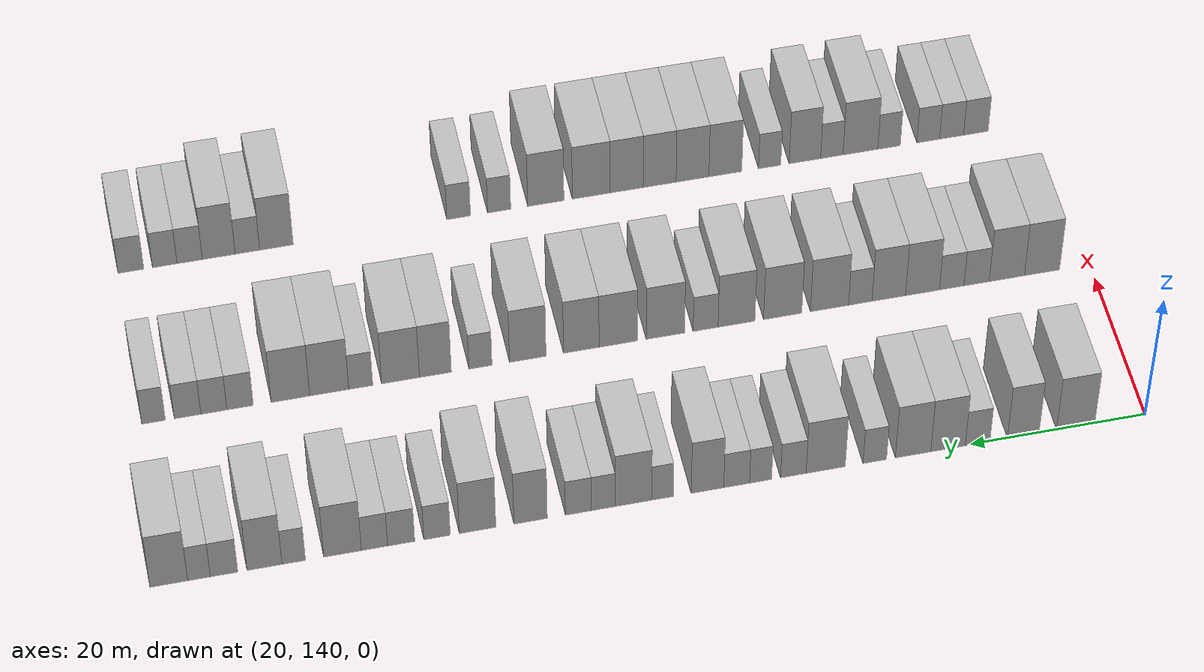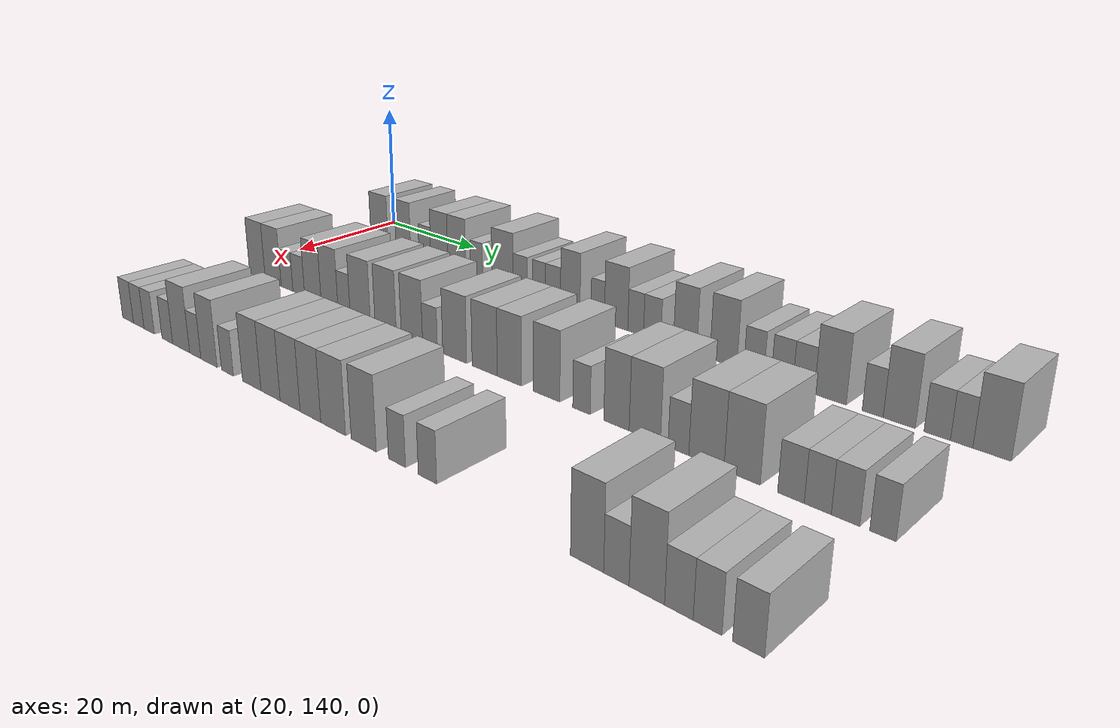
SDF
<sdf version="1.6">
 <world name="default">
  <model name="building_96">
   <static>1</static>
   <pose>25.0000 148.0382 0 0.000000 0.000000 0.000000</pose>
   <link name="link">
    <pose>0 0 4.50 0 0 0</pose>
    <collision name="collision"><geometry><box><size>10.0000 4.3716 9.0000</size></box></geometry></collision>
    <visual name="visual">
     <cast_shadows>0</cast_shadows>
     <geometry><box><size>10.0000 4.3716 9.0000</size></box></geometry>
     <material>
      <script>
       <uri>model://HANNAS_wall/materials/scripts</uri>
       <uri>model://HANNAS_wall/materials/textures</uri>
       <name>vrc/HANNAS_wall</name>
      </script>
     </material>
    </visual>
   </link>
  </model>
  <model name="building_97">
   <static>1</static>
   <pose>25.0000 154.0324 0 0.000000 0.000000 0.000000</pose>
   <link name="link">
    <pose>0 0 4.50 0 0 0</pose>
    <collision name="collision"><geometry><box><size>10.0000 3.6167 9.0000</size></box></geometry></collision>
    <visual name="visual">
     <cast_shadows>0</cast_shadows>
     <geometry><box><size>10.0000 3.6167 9.0000</size></box></geometry>
     <material>
      <script>
       <uri>model://HANNAS_wall/materials/scripts</uri>
       <uri>model://HANNAS_wall/materials/textures</uri>
       <name>vrc/HANNAS_wall</name>
      </script>
     </material>
    </visual>
   </link>
  </model>
  <model name="building_98">
   <static>1</static>
   <pose>25.0000 159.2454 0 0.000000 0.000000 0.000000</pose>
   <link name="link">
    <pose>0 0 3.00 0 0 0</pose>
    <collision name="collision"><geometry><box><size>10.0000 2.8093 6.0000</size></box></geometry></collision>
    <visual name="visual">
     <cast_shadows>0</cast_shadows>
     <geometry><box><size>10.0000 2.8093 6.0000</size></box></geometry>
     <material>
      <script>
       <uri>model://HANNAS_wall/materials/scripts</uri>
       <uri>model://HANNAS_wall/materials/textures</uri>
       <name>vrc/HANNAS_wall</name>
      </script>
     </material>
    </visual>
   </link>
  </model>
  <model name="building_99">
   <static>1</static>
   <pose>25.0000 162.6068 0 0.000000 0.000000 0.000000</pose>
   <link name="link">
    <pose>0 0 4.50 0 0 0</pose>
    <collision name="collision"><geometry><box><size>10.0000 3.9135 9.0000</size></box></geometry></collision>
    <visual name="visual">
     <cast_shadows>0</cast_shadows>
     <geometry><box><size>10.0000 3.9135 9.0000</size></box></geometry>
     <material>
      <script>
       <uri>model://HANNAS_wall/materials/scripts</uri>
       <uri>model://HANNAS_wall/materials/textures</uri>
       <name>vrc/HANNAS_wall</name>
      </script>
     </material>
    </visual>
   </link>
  </model>
  <model name="building_100">
   <static>1</static>
   <pose>25.0000 166.5709 0 0.000000 0.000000 0.000000</pose>
   <link name="link">
    <pose>0 0 4.50 0 0 0</pose>
    <collision name="collision"><geometry><box><size>10.0000 4.0148 9.0000</size></box></geometry></collision>
    <visual name="visual">
     <cast_shadows>0</cast_shadows>
     <geometry><box><size>10.0000 4.0148 9.0000</size></box></geometry>
     <material>
      <script>
       <uri>model://HANNAS_wall/materials/scripts</uri>
       <uri>model://HANNAS_wall/materials/textures</uri>
       <name>vrc/HANNAS_wall</name>
      </script>
     </material>
    </visual>
   </link>
  </model>
  <model name="building_101">
   <static>1</static>
   <pose>25.0000 170.9117 0 0.000000 0.000000 0.000000</pose>
   <link name="link">
    <pose>0 0 3.00 0 0 0</pose>
    <collision name="collision"><geometry><box><size>10.0000 2.6668 6.0000</size></box></geometry></collision>
    <visual name="visual">
     <cast_shadows>0</cast_shadows>
     <geometry><box><size>10.0000 2.6668 6.0000</size></box></geometry>
     <material>
      <script>
       <uri>model://HANNAS_wall/materials/scripts</uri>
       <uri>model://HANNAS_wall/materials/textures</uri>
       <name>vrc/HANNAS_wall</name>
      </script>
     </material>
    </visual>
   </link>
  </model>
  <model name="building_102">
   <static>1</static>
   <pose>25.0000 176.4565 0 0.000000 0.000000 0.000000</pose>
   <link name="link">
    <pose>0 0 4.50 0 0 0</pose>
    <collision name="collision"><geometry><box><size>10.0000 4.4227 9.0000</size></box></geometry></collision>
    <visual name="visual">
     <cast_shadows>0</cast_shadows>
     <geometry><box><size>10.0000 4.4227 9.0000</size></box></geometry>
     <material>
      <script>
       <uri>model://HANNAS_wall/materials/scripts</uri>
       <uri>model://HANNAS_wall/materials/textures</uri>
       <name>vrc/HANNAS_wall</name>
      </script>
     </material>
    </visual>
   </link>
  </model>
  <model name="building_103">
   <static>1</static>
   <pose>25.0000 180.1034 0 0.000000 0.000000 0.000000</pose>
   <link name="link">
    <pose>0 0 3.00 0 0 0</pose>
    <collision name="collision"><geometry><box><size>10.0000 2.8712 6.0000</size></box></geometry></collision>
    <visual name="visual">
     <cast_shadows>0</cast_shadows>
     <geometry><box><size>10.0000 2.8712 6.0000</size></box></geometry>
     <material>
      <script>
       <uri>model://HANNAS_wall/materials/scripts</uri>
       <uri>model://HANNAS_wall/materials/textures</uri>
       <name>vrc/HANNAS_wall</name>
      </script>
     </material>
    </visual>
   </link>
  </model>
  <model name="building_104">
   <static>1</static>
   <pose>25.0000 183.7790 0 0.000000 0.000000 0.000000</pose>
   <link name="link">
    <pose>0 0 3.00 0 0 0</pose>
    <collision name="collision"><geometry><box><size>10.0000 2.4799 6.0000</size></box></geometry></collision>
    <visual name="visual">
     <cast_shadows>0</cast_shadows>
     <geometry><box><size>10.0000 2.4799 6.0000</size></box></geometry>
     <material>
      <script>
       <uri>model://HANNAS_wall/materials/scripts</uri>
       <uri>model://HANNAS_wall/materials/textures</uri>
       <name>vrc/HANNAS_wall</name>
      </script>
     </material>
    </visual>
   </link>
  </model>
  <model name="building_105">
   <static>1</static>
   <pose>25.0000 186.4686 0 0.000000 0.000000 0.000000</pose>
   <link name="link">
    <pose>0 0 3.00 0 0 0</pose>
    <collision name="collision"><geometry><box><size>10.0000 2.8993 6.0000</size></box></geometry></collision>
    <visual name="visual">
     <cast_shadows>0</cast_shadows>
     <geometry><box><size>10.0000 2.8993 6.0000</size></box></geometry>
     <material>
      <script>
       <uri>model://HANNAS_wall/materials/scripts</uri>
       <uri>model://HANNAS_wall/materials/textures</uri>
       <name>vrc/HANNAS_wall</name>
      </script>
     </material>
    </visual>
   </link>
  </model>
  <model name="building_106">
   <static>1</static>
   <pose>25.0000 189.7358 0 0.000000 0.000000 0.000000</pose>
   <link name="link">
    <pose>0 0 4.50 0 0 0</pose>
    <collision name="collision"><geometry><box><size>10.0000 3.6351 9.0000</size></box></geometry></collision>
    <visual name="visual">
     <cast_shadows>0</cast_shadows>
     <geometry><box><size>10.0000 3.6351 9.0000</size></box></geometry>
     <material>
      <script>
       <uri>model://HANNAS_wall/materials/scripts</uri>
       <uri>model://HANNAS_wall/materials/textures</uri>
       <name>vrc/HANNAS_wall</name>
      </script>
     </material>
    </visual>
   </link>
  </model>
  <model name="building_107">
   <static>1</static>
   <pose>25.0000 194.7543 0 0.000000 0.000000 0.000000</pose>
   <link name="link">
    <pose>0 0 3.00 0 0 0</pose>
    <collision name="collision"><geometry><box><size>10.0000 2.4020 6.0000</size></box></geometry></collision>
    <visual name="visual">
     <cast_shadows>0</cast_shadows>
     <geometry><box><size>10.0000 2.4020 6.0000</size></box></geometry>
     <material>
      <script>
       <uri>model://HANNAS_wall/materials/scripts</uri>
       <uri>model://HANNAS_wall/materials/textures</uri>
       <name>vrc/HANNAS_wall</name>
      </script>
     </material>
    </visual>
   </link>
  </model>
  <model name="building_108">
   <static>1</static>
   <pose>25.0000 197.9903 0 0.000000 0.000000 0.000000</pose>
   <link name="link">
    <pose>0 0 4.50 0 0 0</pose>
    <collision name="collision"><geometry><box><size>10.0000 4.0700 9.0000</size></box></geometry></collision>
    <visual name="visual">
     <cast_shadows>0</cast_shadows>
     <geometry><box><size>10.0000 4.0700 9.0000</size></box></geometry>
     <material>
      <script>
       <uri>model://HANNAS_wall/materials/scripts</uri>
       <uri>model://HANNAS_wall/materials/textures</uri>
       <name>vrc/HANNAS_wall</name>
      </script>
     </material>
    </visual>
   </link>
  </model>
  <model name="building_109">
   <static>1</static>
   <pose>25.0000 201.3496 0 0.000000 0.000000 0.000000</pose>
   <link name="link">
    <pose>0 0 3.00 0 0 0</pose>
    <collision name="collision"><geometry><box><size>10.0000 2.6486 6.0000</size></box></geometry></collision>
    <visual name="visual">
     <cast_shadows>0</cast_shadows>
     <geometry><box><size>10.0000 2.6486 6.0000</size></box></geometry>
     <material>
      <script>
       <uri>model://HANNAS_wall/materials/scripts</uri>
       <uri>model://HANNAS_wall/materials/textures</uri>
       <name>vrc/HANNAS_wall</name>
      </script>
     </material>
    </visual>
   </link>
  </model>
  <model name="building_110">
   <static>1</static>
   <pose>25.0000 204.1113 0 0.000000 0.000000 0.000000</pose>
   <link name="link">
    <pose>0 0 3.00 0 0 0</pose>
    <collision name="collision"><geometry><box><size>10.0000 2.8748 6.0000</size></box></geometry></collision>
    <visual name="visual">
     <cast_shadows>0</cast_shadows>
     <geometry><box><size>10.0000 2.8748 6.0000</size></box></geometry>
     <material>
      <script>
       <uri>model://HANNAS_wall/materials/scripts</uri>
       <uri>model://HANNAS_wall/materials/textures</uri>
       <name>vrc/HANNAS_wall</name>
      </script>
     </material>
    </visual>
   </link>
  </model>
  <model name="building_111">
   <static>1</static>
   <pose>25.0000 209.3906 0 0.000000 0.000000 0.000000</pose>
   <link name="link">
    <pose>0 0 4.50 0 0 0</pose>
    <collision name="collision"><geometry><box><size>10.0000 3.6838 9.0000</size></box></geometry></collision>
    <visual name="visual">
     <cast_shadows>0</cast_shadows>
     <geometry><box><size>10.0000 3.6838 9.0000</size></box></geometry>
     <material>
      <script>
       <uri>model://HANNAS_wall/materials/scripts</uri>
       <uri>model://HANNAS_wall/materials/textures</uri>
       <name>vrc/HANNAS_wall</name>
      </script>
     </material>
    </visual>
   </link>
  </model>
  <model name="building_112">
   <static>1</static>
   <pose>25.0000 215.2458 0 0.000000 0.000000 0.000000</pose>
   <link name="link">
    <pose>0 0 4.50 0 0 0</pose>
    <collision name="collision"><geometry><box><size>10.0000 4.0266 9.0000</size></box></geometry></collision>
    <visual name="visual">
     <cast_shadows>0</cast_shadows>
     <geometry><box><size>10.0000 4.0266 9.0000</size></box></geometry>
     <material>
      <script>
       <uri>model://HANNAS_wall/materials/scripts</uri>
       <uri>model://HANNAS_wall/materials/textures</uri>
       <name>vrc/HANNAS_wall</name>
      </script>
     </material>
    </visual>
   </link>
  </model>
  <model name="building_113">
   <static>1</static>
   <pose>25.0000 219.7096 0 0.000000 0.000000 0.000000</pose>
   <link name="link">
    <pose>0 0 3.00 0 0 0</pose>
    <collision name="collision"><geometry><box><size>10.0000 2.9010 6.0000</size></box></geometry></collision>
    <visual name="visual">
     <cast_shadows>0</cast_shadows>
     <geometry><box><size>10.0000 2.9010 6.0000</size></box></geometry>
     <material>
      <script>
       <uri>model://HANNAS_wall/materials/scripts</uri>
       <uri>model://HANNAS_wall/materials/textures</uri>
       <name>vrc/HANNAS_wall</name>
      </script>
     </material>
    </visual>
   </link>
  </model>
  <model name="building_114">
   <static>1</static>
   <pose>25.0000 223.6456 0 0.000000 0.000000 0.000000</pose>
   <link name="link">
    <pose>0 0 3.00 0 0 0</pose>
    <collision name="collision"><geometry><box><size>10.0000 2.9711 6.0000</size></box></geometry></collision>
    <visual name="visual">
     <cast_shadows>0</cast_shadows>
     <geometry><box><size>10.0000 2.9711 6.0000</size></box></geometry>
     <material>
      <script>
       <uri>model://HANNAS_wall/materials/scripts</uri>
       <uri>model://HANNAS_wall/materials/textures</uri>
       <name>vrc/HANNAS_wall</name>
      </script>
     </material>
    </visual>
   </link>
  </model>
  <model name="building_115">
   <static>1</static>
   <pose>25.0000 226.5681 0 0.000000 0.000000 0.000000</pose>
   <link name="link">
    <pose>0 0 3.00 0 0 0</pose>
    <collision name="collision"><geometry><box><size>10.0000 2.8739 6.0000</size></box></geometry></collision>
    <visual name="visual">
     <cast_shadows>0</cast_shadows>
     <geometry><box><size>10.0000 2.8739 6.0000</size></box></geometry>
     <material>
      <script>
       <uri>model://HANNAS_wall/materials/scripts</uri>
       <uri>model://HANNAS_wall/materials/textures</uri>
       <name>vrc/HANNAS_wall</name>
      </script>
     </material>
    </visual>
   </link>
  </model>
  <model name="building_116">
   <static>1</static>
   <pose>25.0000 230.0582 0 0.000000 0.000000 0.000000</pose>
   <link name="link">
    <pose>0 0 4.50 0 0 0</pose>
    <collision name="collision"><geometry><box><size>10.0000 4.1064 9.0000</size></box></geometry></collision>
    <visual name="visual">
     <cast_shadows>0</cast_shadows>
     <geometry><box><size>10.0000 4.1064 9.0000</size></box></geometry>
     <material>
      <script>
       <uri>model://HANNAS_wall/materials/scripts</uri>
       <uri>model://HANNAS_wall/materials/textures</uri>
       <name>vrc/HANNAS_wall</name>
      </script>
     </material>
    </visual>
   </link>
  </model>
  <model name="building_117">
   <static>1</static>
   <pose>25.0000 235.3865 0 0.000000 0.000000 0.000000</pose>
   <link name="link">
    <pose>0 0 3.00 0 0 0</pose>
    <collision name="collision"><geometry><box><size>10.0000 2.5502 6.0000</size></box></geometry></collision>
    <visual name="visual">
     <cast_shadows>0</cast_shadows>
     <geometry><box><size>10.0000 2.5502 6.0000</size></box></geometry>
     <material>
      <script>
       <uri>model://HANNAS_wall/materials/scripts</uri>
       <uri>model://HANNAS_wall/materials/textures</uri>
       <name>vrc/HANNAS_wall</name>
      </script>
     </material>
    </visual>
   </link>
  </model>
  <model name="building_118">
   <static>1</static>
   <pose>25.0000 238.5631 0 0.000000 0.000000 0.000000</pose>
   <link name="link">
    <pose>0 0 4.50 0 0 0</pose>
    <collision name="collision"><geometry><box><size>10.0000 3.8030 9.0000</size></box></geometry></collision>
    <visual name="visual">
     <cast_shadows>0</cast_shadows>
     <geometry><box><size>10.0000 3.8030 9.0000</size></box></geometry>
     <material>
      <script>
       <uri>model://HANNAS_wall/materials/scripts</uri>
       <uri>model://HANNAS_wall/materials/textures</uri>
       <name>vrc/HANNAS_wall</name>
      </script>
     </material>
    </visual>
   </link>
  </model>
  <model name="building_119">
   <static>1</static>
   <pose>25.0000 242.9510 0 0.000000 0.000000 0.000000</pose>
   <link name="link">
    <pose>0 0 3.00 0 0 0</pose>
    <collision name="collision"><geometry><box><size>10.0000 2.9728 6.0000</size></box></geometry></collision>
    <visual name="visual">
     <cast_shadows>0</cast_shadows>
     <geometry><box><size>10.0000 2.9728 6.0000</size></box></geometry>
     <material>
      <script>
       <uri>model://HANNAS_wall/materials/scripts</uri>
       <uri>model://HANNAS_wall/materials/textures</uri>
       <name>vrc/HANNAS_wall</name>
      </script>
     </material>
    </visual>
   </link>
  </model>
  <model name="building_120">
   <static>1</static>
   <pose>25.0000 245.6618 0 0.000000 0.000000 0.000000</pose>
   <link name="link">
    <pose>0 0 3.00 0 0 0</pose>
    <collision name="collision"><geometry><box><size>10.0000 2.4488 6.0000</size></box></geometry></collision>
    <visual name="visual">
     <cast_shadows>0</cast_shadows>
     <geometry><box><size>10.0000 2.4488 6.0000</size></box></geometry>
     <material>
      <script>
       <uri>model://HANNAS_wall/materials/scripts</uri>
       <uri>model://HANNAS_wall/materials/textures</uri>
       <name>vrc/HANNAS_wall</name>
      </script>
     </material>
    </visual>
   </link>
  </model>
  <model name="building_121">
   <static>1</static>
   <pose>25.0000 248.9289 0 0.000000 0.000000 0.000000</pose>
   <link name="link">
    <pose>0 0 4.50 0 0 0</pose>
    <collision name="collision"><geometry><box><size>10.0000 4.0854 9.0000</size></box></geometry></collision>
    <visual name="visual">
     <cast_shadows>0</cast_shadows>
     <geometry><box><size>10.0000 4.0854 9.0000</size></box></geometry>
     <material>
      <script>
       <uri>model://HANNAS_wall/materials/scripts</uri>
       <uri>model://HANNAS_wall/materials/textures</uri>
       <name>vrc/HANNAS_wall</name>
      </script>
     </material>
    </visual>
   </link>
  </model>
  <model name="building_225">
   <static>1</static>
   <pose>47.0000 145.6564 0 0.000000 0.000000 0.000000</pose>
   <link name="link">
    <pose>0 0 4.50 0 0 0</pose>
    <collision name="collision"><geometry><box><size>10.0000 4.1490 9.0000</size></box></geometry></collision>
    <visual name="visual">
     <cast_shadows>0</cast_shadows>
     <geometry><box><size>10.0000 4.1490 9.0000</size></box></geometry>
     <material>
      <script>
       <uri>model://HANNAS_wall/materials/scripts</uri>
       <uri>model://HANNAS_wall/materials/textures</uri>
       <name>vrc/HANNAS_wall</name>
      </script>
     </material>
    </visual>
   </link>
  </model>
  <model name="building_226">
   <static>1</static>
   <pose>47.0000 149.8025 0 0.000000 0.000000 0.000000</pose>
   <link name="link">
    <pose>0 0 4.50 0 0 0</pose>
    <collision name="collision"><geometry><box><size>10.0000 4.1432 9.0000</size></box></geometry></collision>
    <visual name="visual">
     <cast_shadows>0</cast_shadows>
     <geometry><box><size>10.0000 4.1432 9.0000</size></box></geometry>
     <material>
      <script>
       <uri>model://HANNAS_wall/materials/scripts</uri>
       <uri>model://HANNAS_wall/materials/textures</uri>
       <name>vrc/HANNAS_wall</name>
      </script>
     </material>
    </visual>
   </link>
  </model>
  <model name="building_227">
   <static>1</static>
   <pose>47.0000 153.3498 0 0.000000 0.000000 0.000000</pose>
   <link name="link">
    <pose>0 0 3.00 0 0 0</pose>
    <collision name="collision"><geometry><box><size>10.0000 2.9514 6.0000</size></box></geometry></collision>
    <visual name="visual">
     <cast_shadows>0</cast_shadows>
     <geometry><box><size>10.0000 2.9514 6.0000</size></box></geometry>
     <material>
      <script>
       <uri>model://HANNAS_wall/materials/scripts</uri>
       <uri>model://HANNAS_wall/materials/textures</uri>
       <name>vrc/HANNAS_wall</name>
      </script>
     </material>
    </visual>
   </link>
  </model>
  <model name="building_228">
   <static>1</static>
   <pose>47.0000 156.2701 0 0.000000 0.000000 0.000000</pose>
   <link name="link">
    <pose>0 0 3.00 0 0 0</pose>
    <collision name="collision"><geometry><box><size>10.0000 2.8891 6.0000</size></box></geometry></collision>
    <visual name="visual">
     <cast_shadows>0</cast_shadows>
     <geometry><box><size>10.0000 2.8891 6.0000</size></box></geometry>
     <material>
      <script>
       <uri>model://HANNAS_wall/materials/scripts</uri>
       <uri>model://HANNAS_wall/materials/textures</uri>
       <name>vrc/HANNAS_wall</name>
      </script>
     </material>
    </visual>
   </link>
  </model>
  <model name="building_229">
   <static>1</static>
   <pose>47.0000 159.6970 0 0.000000 0.000000 0.000000</pose>
   <link name="link">
    <pose>0 0 4.50 0 0 0</pose>
    <collision name="collision"><geometry><box><size>10.0000 3.9647 9.0000</size></box></geometry></collision>
    <visual name="visual">
     <cast_shadows>0</cast_shadows>
     <geometry><box><size>10.0000 3.9647 9.0000</size></box></geometry>
     <material>
      <script>
       <uri>model://HANNAS_wall/materials/scripts</uri>
       <uri>model://HANNAS_wall/materials/textures</uri>
       <name>vrc/HANNAS_wall</name>
      </script>
     </material>
    </visual>
   </link>
  </model>
  <model name="building_230">
   <static>1</static>
   <pose>47.0000 163.6345 0 0.000000 0.000000 0.000000</pose>
   <link name="link">
    <pose>0 0 4.50 0 0 0</pose>
    <collision name="collision"><geometry><box><size>10.0000 3.9104 9.0000</size></box></geometry></collision>
    <visual name="visual">
     <cast_shadows>0</cast_shadows>
     <geometry><box><size>10.0000 3.9104 9.0000</size></box></geometry>
     <material>
      <script>
       <uri>model://HANNAS_wall/materials/scripts</uri>
       <uri>model://HANNAS_wall/materials/textures</uri>
       <name>vrc/HANNAS_wall</name>
      </script>
     </material>
    </visual>
   </link>
  </model>
  <model name="building_231">
   <static>1</static>
   <pose>47.0000 166.9583 0 0.000000 0.000000 0.000000</pose>
   <link name="link">
    <pose>0 0 3.00 0 0 0</pose>
    <collision name="collision"><geometry><box><size>10.0000 2.7372 6.0000</size></box></geometry></collision>
    <visual name="visual">
     <cast_shadows>0</cast_shadows>
     <geometry><box><size>10.0000 2.7372 6.0000</size></box></geometry>
     <material>
      <script>
       <uri>model://HANNAS_wall/materials/scripts</uri>
       <uri>model://HANNAS_wall/materials/textures</uri>
       <name>vrc/HANNAS_wall</name>
      </script>
     </material>
    </visual>
   </link>
  </model>
  <model name="building_232">
   <static>1</static>
   <pose>47.0000 170.5443 0 0.000000 0.000000 0.000000</pose>
   <link name="link">
    <pose>0 0 4.50 0 0 0</pose>
    <collision name="collision"><geometry><box><size>10.0000 4.4347 9.0000</size></box></geometry></collision>
    <visual name="visual">
     <cast_shadows>0</cast_shadows>
     <geometry><box><size>10.0000 4.4347 9.0000</size></box></geometry>
     <material>
      <script>
       <uri>model://HANNAS_wall/materials/scripts</uri>
       <uri>model://HANNAS_wall/materials/textures</uri>
       <name>vrc/HANNAS_wall</name>
      </script>
     </material>
    </visual>
   </link>
  </model>
  <model name="building_233">
   <static>1</static>
   <pose>47.0000 175.9785 0 0.000000 0.000000 0.000000</pose>
   <link name="link">
    <pose>0 0 4.50 0 0 0</pose>
    <collision name="collision"><geometry><box><size>10.0000 4.4336 9.0000</size></box></geometry></collision>
    <visual name="visual">
     <cast_shadows>0</cast_shadows>
     <geometry><box><size>10.0000 4.4336 9.0000</size></box></geometry>
     <material>
      <script>
       <uri>model://HANNAS_wall/materials/scripts</uri>
       <uri>model://HANNAS_wall/materials/textures</uri>
       <name>vrc/HANNAS_wall</name>
      </script>
     </material>
    </visual>
   </link>
  </model>
  <model name="building_234">
   <static>1</static>
   <pose>47.0000 181.3270 0 0.000000 0.000000 0.000000</pose>
   <link name="link">
    <pose>0 0 4.50 0 0 0</pose>
    <collision name="collision"><geometry><box><size>10.0000 4.2635 9.0000</size></box></geometry></collision>
    <visual name="visual">
     <cast_shadows>0</cast_shadows>
     <geometry><box><size>10.0000 4.2635 9.0000</size></box></geometry>
     <material>
      <script>
       <uri>model://HANNAS_wall/materials/scripts</uri>
       <uri>model://HANNAS_wall/materials/textures</uri>
       <name>vrc/HANNAS_wall</name>
      </script>
     </material>
    </visual>
   </link>
  </model>
  <model name="building_235">
   <static>1</static>
   <pose>47.0000 184.8928 0 0.000000 0.000000 0.000000</pose>
   <link name="link">
    <pose>0 0 3.00 0 0 0</pose>
    <collision name="collision"><geometry><box><size>10.0000 2.8681 6.0000</size></box></geometry></collision>
    <visual name="visual">
     <cast_shadows>0</cast_shadows>
     <geometry><box><size>10.0000 2.8681 6.0000</size></box></geometry>
     <material>
      <script>
       <uri>model://HANNAS_wall/materials/scripts</uri>
       <uri>model://HANNAS_wall/materials/textures</uri>
       <name>vrc/HANNAS_wall</name>
      </script>
     </material>
    </visual>
   </link>
  </model>
  <model name="building_236">
   <static>1</static>
   <pose>47.0000 189.5288 0 0.000000 0.000000 0.000000</pose>
   <link name="link">
    <pose>0 0 4.50 0 0 0</pose>
    <collision name="collision"><geometry><box><size>10.0000 4.4038 9.0000</size></box></geometry></collision>
    <visual name="visual">
     <cast_shadows>0</cast_shadows>
     <geometry><box><size>10.0000 4.4038 9.0000</size></box></geometry>
     <material>
      <script>
       <uri>model://HANNAS_wall/materials/scripts</uri>
       <uri>model://HANNAS_wall/materials/textures</uri>
       <name>vrc/HANNAS_wall</name>
      </script>
     </material>
    </visual>
   </link>
  </model>
  <model name="building_237">
   <static>1</static>
   <pose>47.0000 194.9325 0 0.000000 0.000000 0.000000</pose>
   <link name="link">
    <pose>0 0 4.50 0 0 0</pose>
    <collision name="collision"><geometry><box><size>10.0000 4.4037 9.0000</size></box></geometry></collision>
    <visual name="visual">
     <cast_shadows>0</cast_shadows>
     <geometry><box><size>10.0000 4.4037 9.0000</size></box></geometry>
     <material>
      <script>
       <uri>model://HANNAS_wall/materials/scripts</uri>
       <uri>model://HANNAS_wall/materials/textures</uri>
       <name>vrc/HANNAS_wall</name>
      </script>
     </material>
    </visual>
   </link>
  </model>
  <model name="building_238">
   <static>1</static>
   <pose>47.0000 199.1703 0 0.000000 0.000000 0.000000</pose>
   <link name="link">
    <pose>0 0 4.50 0 0 0</pose>
    <collision name="collision"><geometry><box><size>10.0000 4.0720 9.0000</size></box></geometry></collision>
    <visual name="visual">
     <cast_shadows>0</cast_shadows>
     <geometry><box><size>10.0000 4.0720 9.0000</size></box></geometry>
     <material>
      <script>
       <uri>model://HANNAS_wall/materials/scripts</uri>
       <uri>model://HANNAS_wall/materials/textures</uri>
       <name>vrc/HANNAS_wall</name>
      </script>
     </material>
    </visual>
   </link>
  </model>
  <model name="building_239">
   <static>1</static>
   <pose>47.0000 205.2847 0 0.000000 0.000000 0.000000</pose>
   <link name="link">
    <pose>0 0 4.50 0 0 0</pose>
    <collision name="collision"><geometry><box><size>10.0000 4.1568 9.0000</size></box></geometry></collision>
    <visual name="visual">
     <cast_shadows>0</cast_shadows>
     <geometry><box><size>10.0000 4.1568 9.0000</size></box></geometry>
     <material>
      <script>
       <uri>model://HANNAS_wall/materials/scripts</uri>
       <uri>model://HANNAS_wall/materials/textures</uri>
       <name>vrc/HANNAS_wall</name>
      </script>
     </material>
    </visual>
   </link>
  </model>
  <model name="building_240">
   <static>1</static>
   <pose>47.0000 210.6713 0 0.000000 0.000000 0.000000</pose>
   <link name="link">
    <pose>0 0 3.00 0 0 0</pose>
    <collision name="collision"><geometry><box><size>10.0000 2.6163 6.0000</size></box></geometry></collision>
    <visual name="visual">
     <cast_shadows>0</cast_shadows>
     <geometry><box><size>10.0000 2.6163 6.0000</size></box></geometry>
     <material>
      <script>
       <uri>model://HANNAS_wall/materials/scripts</uri>
       <uri>model://HANNAS_wall/materials/textures</uri>
       <name>vrc/HANNAS_wall</name>
      </script>
     </material>
    </visual>
   </link>
  </model>
  <model name="building_241">
   <static>1</static>
   <pose>47.0000 215.7871 0 0.000000 0.000000 0.000000</pose>
   <link name="link">
    <pose>0 0 4.50 0 0 0</pose>
    <collision name="collision"><geometry><box><size>10.0000 3.6153 9.0000</size></box></geometry></collision>
    <visual name="visual">
     <cast_shadows>0</cast_shadows>
     <geometry><box><size>10.0000 3.6153 9.0000</size></box></geometry>
     <material>
      <script>
       <uri>model://HANNAS_wall/materials/scripts</uri>
       <uri>model://HANNAS_wall/materials/textures</uri>
       <name>vrc/HANNAS_wall</name>
      </script>
     </material>
    </visual>
   </link>
  </model>
  <model name="building_242">
   <static>1</static>
   <pose>47.0000 219.7341 0 0.000000 0.000000 0.000000</pose>
   <link name="link">
    <pose>0 0 4.50 0 0 0</pose>
    <collision name="collision"><geometry><box><size>10.0000 4.2787 9.0000</size></box></geometry></collision>
    <visual name="visual">
     <cast_shadows>0</cast_shadows>
     <geometry><box><size>10.0000 4.2787 9.0000</size></box></geometry>
     <material>
      <script>
       <uri>model://HANNAS_wall/materials/scripts</uri>
       <uri>model://HANNAS_wall/materials/textures</uri>
       <name>vrc/HANNAS_wall</name>
      </script>
     </material>
    </visual>
   </link>
  </model>
  <model name="building_243">
   <static>1</static>
   <pose>47.0000 224.2245 0 0.000000 0.000000 0.000000</pose>
   <link name="link">
    <pose>0 0 3.00 0 0 0</pose>
    <collision name="collision"><geometry><box><size>10.0000 2.7021 6.0000</size></box></geometry></collision>
    <visual name="visual">
     <cast_shadows>0</cast_shadows>
     <geometry><box><size>10.0000 2.7021 6.0000</size></box></geometry>
     <material>
      <script>
       <uri>model://HANNAS_wall/materials/scripts</uri>
       <uri>model://HANNAS_wall/materials/textures</uri>
       <name>vrc/HANNAS_wall</name>
      </script>
     </material>
    </visual>
   </link>
  </model>
  <model name="building_244">
   <static>1</static>
   <pose>47.0000 227.7769 0 0.000000 0.000000 0.000000</pose>
   <link name="link">
    <pose>0 0 4.50 0 0 0</pose>
    <collision name="collision"><geometry><box><size>10.0000 4.4028 9.0000</size></box></geometry></collision>
    <visual name="visual">
     <cast_shadows>0</cast_shadows>
     <geometry><box><size>10.0000 4.4028 9.0000</size></box></geometry>
     <material>
      <script>
       <uri>model://HANNAS_wall/materials/scripts</uri>
       <uri>model://HANNAS_wall/materials/textures</uri>
       <name>vrc/HANNAS_wall</name>
      </script>
     </material>
    </visual>
   </link>
  </model>
  <model name="building_245">
   <static>1</static>
   <pose>47.0000 232.1383 0 0.000000 0.000000 0.000000</pose>
   <link name="link">
    <pose>0 0 4.50 0 0 0</pose>
    <collision name="collision"><geometry><box><size>10.0000 4.3198 9.0000</size></box></geometry></collision>
    <visual name="visual">
     <cast_shadows>0</cast_shadows>
     <geometry><box><size>10.0000 4.3198 9.0000</size></box></geometry>
     <material>
      <script>
       <uri>model://HANNAS_wall/materials/scripts</uri>
       <uri>model://HANNAS_wall/materials/textures</uri>
       <name>vrc/HANNAS_wall</name>
      </script>
     </material>
    </visual>
   </link>
  </model>
  <model name="building_246">
   <static>1</static>
   <pose>47.0000 237.7784 0 0.000000 0.000000 0.000000</pose>
   <link name="link">
    <pose>0 0 3.00 0 0 0</pose>
    <collision name="collision"><geometry><box><size>10.0000 2.9605 6.0000</size></box></geometry></collision>
    <visual name="visual">
     <cast_shadows>0</cast_shadows>
     <geometry><box><size>10.0000 2.9605 6.0000</size></box></geometry>
     <material>
      <script>
       <uri>model://HANNAS_wall/materials/scripts</uri>
       <uri>model://HANNAS_wall/materials/textures</uri>
       <name>vrc/HANNAS_wall</name>
      </script>
     </material>
    </visual>
   </link>
  </model>
  <model name="building_247">
   <static>1</static>
   <pose>47.0000 240.7124 0 0.000000 0.000000 0.000000</pose>
   <link name="link">
    <pose>0 0 3.00 0 0 0</pose>
    <collision name="collision"><geometry><box><size>10.0000 2.9074 6.0000</size></box></geometry></collision>
    <visual name="visual">
     <cast_shadows>0</cast_shadows>
     <geometry><box><size>10.0000 2.9074 6.0000</size></box></geometry>
     <material>
      <script>
       <uri>model://HANNAS_wall/materials/scripts</uri>
       <uri>model://HANNAS_wall/materials/textures</uri>
       <name>vrc/HANNAS_wall</name>
      </script>
     </material>
    </visual>
   </link>
  </model>
  <model name="building_248">
   <static>1</static>
   <pose>47.0000 243.6466 0 0.000000 0.000000 0.000000</pose>
   <link name="link">
    <pose>0 0 3.00 0 0 0</pose>
    <collision name="collision"><geometry><box><size>10.0000 2.9612 6.0000</size></box></geometry></collision>
    <visual name="visual">
     <cast_shadows>0</cast_shadows>
     <geometry><box><size>10.0000 2.9612 6.0000</size></box></geometry>
     <material>
      <script>
       <uri>model://HANNAS_wall/materials/scripts</uri>
       <uri>model://HANNAS_wall/materials/textures</uri>
       <name>vrc/HANNAS_wall</name>
      </script>
     </material>
    </visual>
   </link>
  </model>
  <model name="building_249">
   <static>1</static>
   <pose>47.0000 247.4373 0 0.000000 0.000000 0.000000</pose>
   <link name="link">
    <pose>0 0 3.00 0 0 0</pose>
    <collision name="collision"><geometry><box><size>10.0000 2.6201 6.0000</size></box></geometry></collision>
    <visual name="visual">
     <cast_shadows>0</cast_shadows>
     <geometry><box><size>10.0000 2.6201 6.0000</size></box></geometry>
     <material>
      <script>
       <uri>model://HANNAS_wall/materials/scripts</uri>
       <uri>model://HANNAS_wall/materials/textures</uri>
       <name>vrc/HANNAS_wall</name>
      </script>
     </material>
    </visual>
   </link>
  </model>
  <model name="building_342">
   <static>1</static>
   <pose>69.0000 147.4290 0 0.000000 0.000000 0.000000</pose>
   <link name="link">
    <pose>0 0 3.00 0 0 0</pose>
    <collision name="collision"><geometry><box><size>10.0000 2.9678 6.0000</size></box></geometry></collision>
    <visual name="visual">
     <cast_shadows>0</cast_shadows>
     <geometry><box><size>10.0000 2.9678 6.0000</size></box></geometry>
     <material>
      <script>
       <uri>model://HANNAS_wall/materials/scripts</uri>
       <uri>model://HANNAS_wall/materials/textures</uri>
       <name>vrc/HANNAS_wall</name>
      </script>
     </material>
    </visual>
   </link>
  </model>
  <model name="building_343">
   <static>1</static>
   <pose>69.0000 150.3615 0 0.000000 0.000000 0.000000</pose>
   <link name="link">
    <pose>0 0 3.00 0 0 0</pose>
    <collision name="collision"><geometry><box><size>10.0000 2.8972 6.0000</size></box></geometry></collision>
    <visual name="visual">
     <cast_shadows>0</cast_shadows>
     <geometry><box><size>10.0000 2.8972 6.0000</size></box></geometry>
     <material>
      <script>
       <uri>model://HANNAS_wall/materials/scripts</uri>
       <uri>model://HANNAS_wall/materials/textures</uri>
       <name>vrc/HANNAS_wall</name>
      </script>
     </material>
    </visual>
   </link>
  </model>
  <model name="building_344">
   <static>1</static>
   <pose>69.0000 153.1795 0 0.000000 0.000000 0.000000</pose>
   <link name="link">
    <pose>0 0 3.00 0 0 0</pose>
    <collision name="collision"><geometry><box><size>10.0000 2.7387 6.0000</size></box></geometry></collision>
    <visual name="visual">
     <cast_shadows>0</cast_shadows>
     <geometry><box><size>10.0000 2.7387 6.0000</size></box></geometry>
     <material>
      <script>
       <uri>model://HANNAS_wall/materials/scripts</uri>
       <uri>model://HANNAS_wall/materials/textures</uri>
       <name>vrc/HANNAS_wall</name>
      </script>
     </material>
    </visual>
   </link>
  </model>
  <model name="building_345">
   <static>1</static>
   <pose>69.0000 157.9033 0 0.000000 0.000000 0.000000</pose>
   <link name="link">
    <pose>0 0 3.00 0 0 0</pose>
    <collision name="collision"><geometry><box><size>10.0000 2.7091 6.0000</size></box></geometry></collision>
    <visual name="visual">
     <cast_shadows>0</cast_shadows>
     <geometry><box><size>10.0000 2.7091 6.0000</size></box></geometry>
     <material>
      <script>
       <uri>model://HANNAS_wall/materials/scripts</uri>
       <uri>model://HANNAS_wall/materials/textures</uri>
       <name>vrc/HANNAS_wall</name>
      </script>
     </material>
    </visual>
   </link>
  </model>
  <model name="building_346">
   <static>1</static>
   <pose>69.0000 161.3491 0 0.000000 0.000000 0.000000</pose>
   <link name="link">
    <pose>0 0 4.50 0 0 0</pose>
    <collision name="collision"><geometry><box><size>10.0000 4.1825 9.0000</size></box></geometry></collision>
    <visual name="visual">
     <cast_shadows>0</cast_shadows>
     <geometry><box><size>10.0000 4.1825 9.0000</size></box></geometry>
     <material>
      <script>
       <uri>model://HANNAS_wall/materials/scripts</uri>
       <uri>model://HANNAS_wall/materials/textures</uri>
       <name>vrc/HANNAS_wall</name>
      </script>
     </material>
    </visual>
   </link>
  </model>
  <model name="building_347">
   <static>1</static>
   <pose>69.0000 164.7829 0 0.000000 0.000000 0.000000</pose>
   <link name="link">
    <pose>0 0 3.00 0 0 0</pose>
    <collision name="collision"><geometry><box><size>10.0000 2.6849 6.0000</size></box></geometry></collision>
    <visual name="visual">
     <cast_shadows>0</cast_shadows>
     <geometry><box><size>10.0000 2.6849 6.0000</size></box></geometry>
     <material>
      <script>
       <uri>model://HANNAS_wall/materials/scripts</uri>
       <uri>model://HANNAS_wall/materials/textures</uri>
       <name>vrc/HANNAS_wall</name>
      </script>
     </material>
    </visual>
   </link>
  </model>
  <model name="building_348">
   <static>1</static>
   <pose>69.0000 168.0063 0 0.000000 0.000000 0.000000</pose>
   <link name="link">
    <pose>0 0 4.50 0 0 0</pose>
    <collision name="collision"><geometry><box><size>10.0000 3.7619 9.0000</size></box></geometry></collision>
    <visual name="visual">
     <cast_shadows>0</cast_shadows>
     <geometry><box><size>10.0000 3.7619 9.0000</size></box></geometry>
     <material>
      <script>
       <uri>model://HANNAS_wall/materials/scripts</uri>
       <uri>model://HANNAS_wall/materials/textures</uri>
       <name>vrc/HANNAS_wall</name>
      </script>
     </material>
    </visual>
   </link>
  </model>
  <model name="building_349">
   <static>1</static>
   <pose>69.0000 172.2157 0 0.000000 0.000000 0.000000</pose>
   <link name="link">
    <pose>0 0 3.00 0 0 0</pose>
    <collision name="collision"><geometry><box><size>10.0000 2.6569 6.0000</size></box></geometry></collision>
    <visual name="visual">
     <cast_shadows>0</cast_shadows>
     <geometry><box><size>10.0000 2.6569 6.0000</size></box></geometry>
     <material>
      <script>
       <uri>model://HANNAS_wall/materials/scripts</uri>
       <uri>model://HANNAS_wall/materials/textures</uri>
       <name>vrc/HANNAS_wall</name>
      </script>
     </material>
    </visual>
   </link>
  </model>
  <model name="building_350">
   <static>1</static>
   <pose>69.0000 177.4992 0 0.000000 0.000000 0.000000</pose>
   <link name="link">
    <pose>0 0 4.50 0 0 0</pose>
    <collision name="collision"><geometry><box><size>10.0000 3.9103 9.0000</size></box></geometry></collision>
    <visual name="visual">
     <cast_shadows>0</cast_shadows>
     <geometry><box><size>10.0000 3.9103 9.0000</size></box></geometry>
     <material>
      <script>
       <uri>model://HANNAS_wall/materials/scripts</uri>
       <uri>model://HANNAS_wall/materials/textures</uri>
       <name>vrc/HANNAS_wall</name>
      </script>
     </material>
    </visual>
   </link>
  </model>
  <model name="building_351">
   <static>1</static>
   <pose>69.0000 181.4019 0 0.000000 0.000000 0.000000</pose>
   <link name="link">
    <pose>0 0 4.50 0 0 0</pose>
    <collision name="collision"><geometry><box><size>10.0000 3.8952 9.0000</size></box></geometry></collision>
    <visual name="visual">
     <cast_shadows>0</cast_shadows>
     <geometry><box><size>10.0000 3.8952 9.0000</size></box></geometry>
     <material>
      <script>
       <uri>model://HANNAS_wall/materials/scripts</uri>
       <uri>model://HANNAS_wall/materials/textures</uri>
       <name>vrc/HANNAS_wall</name>
      </script>
     </material>
    </visual>
   </link>
  </model>
  <model name="building_352">
   <static>1</static>
   <pose>69.0000 185.2988 0 0.000000 0.000000 0.000000</pose>
   <link name="link">
    <pose>0 0 4.50 0 0 0</pose>
    <collision name="collision"><geometry><box><size>10.0000 3.8986 9.0000</size></box></geometry></collision>
    <visual name="visual">
     <cast_shadows>0</cast_shadows>
     <geometry><box><size>10.0000 3.8986 9.0000</size></box></geometry>
     <material>
      <script>
       <uri>model://HANNAS_wall/materials/scripts</uri>
       <uri>model://HANNAS_wall/materials/textures</uri>
       <name>vrc/HANNAS_wall</name>
      </script>
     </material>
    </visual>
   </link>
  </model>
  <model name="building_353">
   <static>1</static>
   <pose>69.0000 189.1984 0 0.000000 0.000000 0.000000</pose>
   <link name="link">
    <pose>0 0 4.50 0 0 0</pose>
    <collision name="collision"><geometry><box><size>10.0000 3.9005 9.0000</size></box></geometry></collision>
    <visual name="visual">
     <cast_shadows>0</cast_shadows>
     <geometry><box><size>10.0000 3.9005 9.0000</size></box></geometry>
     <material>
      <script>
       <uri>model://HANNAS_wall/materials/scripts</uri>
       <uri>model://HANNAS_wall/materials/textures</uri>
       <name>vrc/HANNAS_wall</name>
      </script>
     </material>
    </visual>
   </link>
  </model>
  <model name="building_354">
   <static>1</static>
   <pose>69.0000 193.3805 0 0.000000 0.000000 0.000000</pose>
   <link name="link">
    <pose>0 0 4.50 0 0 0</pose>
    <collision name="collision"><geometry><box><size>10.0000 4.4636 9.0000</size></box></geometry></collision>
    <visual name="visual">
     <cast_shadows>0</cast_shadows>
     <geometry><box><size>10.0000 4.4636 9.0000</size></box></geometry>
     <material>
      <script>
       <uri>model://HANNAS_wall/materials/scripts</uri>
       <uri>model://HANNAS_wall/materials/textures</uri>
       <name>vrc/HANNAS_wall</name>
      </script>
     </material>
    </visual>
   </link>
  </model>
  <model name="building_355">
   <static>1</static>
   <pose>69.0000 198.7390 0 0.000000 0.000000 0.000000</pose>
   <link name="link">
    <pose>0 0 4.50 0 0 0</pose>
    <collision name="collision"><geometry><box><size>10.0000 4.2535 9.0000</size></box></geometry></collision>
    <visual name="visual">
     <cast_shadows>0</cast_shadows>
     <geometry><box><size>10.0000 4.2535 9.0000</size></box></geometry>
     <material>
      <script>
       <uri>model://HANNAS_wall/materials/scripts</uri>
       <uri>model://HANNAS_wall/materials/textures</uri>
       <name>vrc/HANNAS_wall</name>
      </script>
     </material>
    </visual>
   </link>
  </model>
  <model name="building_356">
   <static>1</static>
   <pose>69.0000 204.2243 0 0.000000 0.000000 0.000000</pose>
   <link name="link">
    <pose>0 0 3.00 0 0 0</pose>
    <collision name="collision"><geometry><box><size>10.0000 2.7170 6.0000</size></box></geometry></collision>
    <visual name="visual">
     <cast_shadows>0</cast_shadows>
     <geometry><box><size>10.0000 2.7170 6.0000</size></box></geometry>
     <material>
      <script>
       <uri>model://HANNAS_wall/materials/scripts</uri>
       <uri>model://HANNAS_wall/materials/textures</uri>
       <name>vrc/HANNAS_wall</name>
      </script>
     </material>
    </visual>
   </link>
  </model>
  <model name="building_357">
   <static>1</static>
   <pose>69.0000 208.9675 0 0.000000 0.000000 0.000000</pose>
   <link name="link">
    <pose>0 0 3.00 0 0 0</pose>
    <collision name="collision"><geometry><box><size>10.0000 2.7694 6.0000</size></box></geometry></collision>
    <visual name="visual">
     <cast_shadows>0</cast_shadows>
     <geometry><box><size>10.0000 2.7694 6.0000</size></box></geometry>
     <material>
      <script>
       <uri>model://HANNAS_wall/materials/scripts</uri>
       <uri>model://HANNAS_wall/materials/textures</uri>
       <name>vrc/HANNAS_wall</name>
      </script>
     </material>
    </visual>
   </link>
  </model>
  <model name="building_358">
   <static>1</static>
   <pose>69.0000 230.1509 0 0.000000 0.000000 0.000000</pose>
   <link name="link">
    <pose>0 0 4.50 0 0 0</pose>
    <collision name="collision"><geometry><box><size>10.0000 3.8658 9.0000</size></box></geometry></collision>
    <visual name="visual">
     <cast_shadows>0</cast_shadows>
     <geometry><box><size>10.0000 3.8658 9.0000</size></box></geometry>
     <material>
      <script>
       <uri>model://HANNAS_wall/materials/scripts</uri>
       <uri>model://HANNAS_wall/materials/textures</uri>
       <name>vrc/HANNAS_wall</name>
      </script>
     </material>
    </visual>
   </link>
  </model>
  <model name="building_359">
   <static>1</static>
   <pose>69.0000 233.5012 0 0.000000 0.000000 0.000000</pose>
   <link name="link">
    <pose>0 0 3.00 0 0 0</pose>
    <collision name="collision"><geometry><box><size>10.0000 2.8347 6.0000</size></box></geometry></collision>
    <visual name="visual">
     <cast_shadows>0</cast_shadows>
     <geometry><box><size>10.0000 2.8347 6.0000</size></box></geometry>
     <material>
      <script>
       <uri>model://HANNAS_wall/materials/scripts</uri>
       <uri>model://HANNAS_wall/materials/textures</uri>
       <name>vrc/HANNAS_wall</name>
      </script>
     </material>
    </visual>
   </link>
  </model>
  <model name="building_360">
   <static>1</static>
   <pose>69.0000 236.8054 0 0.000000 0.000000 0.000000</pose>
   <link name="link">
    <pose>0 0 4.50 0 0 0</pose>
    <collision name="collision"><geometry><box><size>10.0000 3.7738 9.0000</size></box></geometry></collision>
    <visual name="visual">
     <cast_shadows>0</cast_shadows>
     <geometry><box><size>10.0000 3.7738 9.0000</size></box></geometry>
     <material>
      <script>
       <uri>model://HANNAS_wall/materials/scripts</uri>
       <uri>model://HANNAS_wall/materials/textures</uri>
       <name>vrc/HANNAS_wall</name>
      </script>
     </material>
    </visual>
   </link>
  </model>
  <model name="building_361">
   <static>1</static>
   <pose>69.0000 240.1483 0 0.000000 0.000000 0.000000</pose>
   <link name="link">
    <pose>0 0 3.00 0 0 0</pose>
    <collision name="collision"><geometry><box><size>10.0000 2.9118 6.0000</size></box></geometry></collision>
    <visual name="visual">
     <cast_shadows>0</cast_shadows>
     <geometry><box><size>10.0000 2.9118 6.0000</size></box></geometry>
     <material>
      <script>
       <uri>model://HANNAS_wall/materials/scripts</uri>
       <uri>model://HANNAS_wall/materials/textures</uri>
       <name>vrc/HANNAS_wall</name>
      </script>
     </material>
    </visual>
   </link>
  </model>
  <model name="building_362">
   <static>1</static>
   <pose>69.0000 243.0137 0 0.000000 0.000000 0.000000</pose>
   <link name="link">
    <pose>0 0 3.00 0 0 0</pose>
    <collision name="collision"><geometry><box><size>10.0000 2.8189 6.0000</size></box></geometry></collision>
    <visual name="visual">
     <cast_shadows>0</cast_shadows>
     <geometry><box><size>10.0000 2.8189 6.0000</size></box></geometry>
     <material>
      <script>
       <uri>model://HANNAS_wall/materials/scripts</uri>
       <uri>model://HANNAS_wall/materials/textures</uri>
       <name>vrc/HANNAS_wall</name>
      </script>
     </material>
    </visual>
   </link>
  </model>
  <model name="building_363">
   <static>1</static>
   <pose>69.0000 246.9005 0 0.000000 0.000000 0.000000</pose>
   <link name="link">
    <pose>0 0 3.00 0 0 0</pose>
    <collision name="collision"><geometry><box><size>10.0000 2.9548 6.0000</size></box></geometry></collision>
    <visual name="visual">
     <cast_shadows>0</cast_shadows>
     <geometry><box><size>10.0000 2.9548 6.0000</size></box></geometry>
     <material>
      <script>
       <uri>model://HANNAS_wall/materials/scripts</uri>
       <uri>model://HANNAS_wall/materials/textures</uri>
       <name>vrc/HANNAS_wall</name>
      </script>
     </material>
    </visual>
   </link>
  </model>
 </world>
</sdf>
